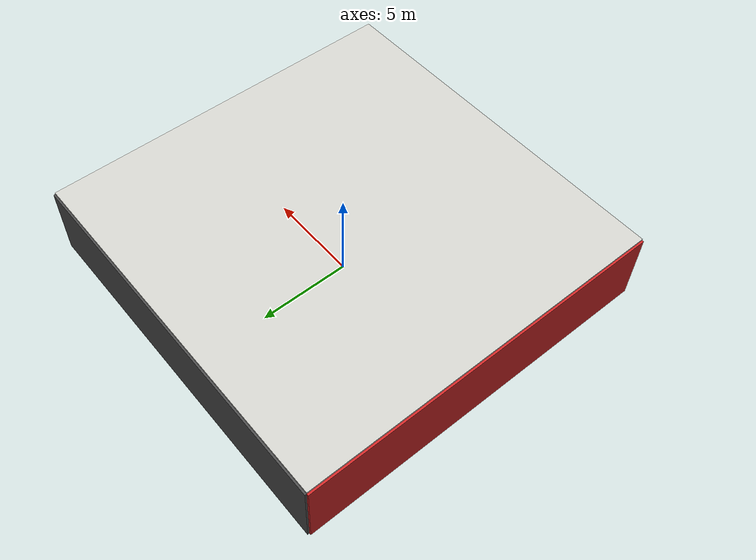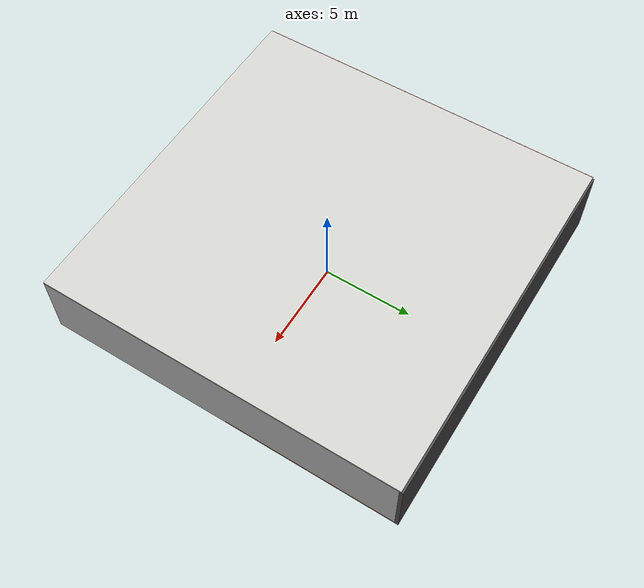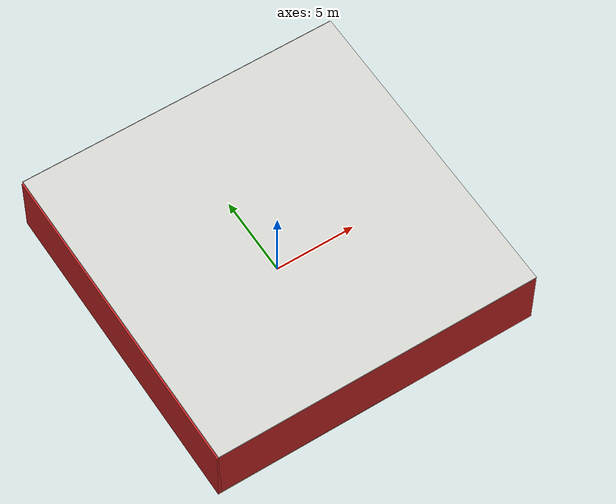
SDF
<sdf version="1.4">
 <world name="default">
  <physics type="ode">
   <max_step_size>0.001</max_step_size>
   <real_time_factor>1</real_time_factor>
   <real_time_update_rate>1000</real_time_update_rate>
   <gravity>0 0 -9.8</gravity>
  </physics>
  <scene><ambient>0.4 0.4 0.4 1</ambient><background>0.7 0.7 0.7 1</background><shadows>1</shadows></scene>
  <model name="Surrounding">
   <static>1</static>
   <link name="Ceiling">
    <collision name="Ceiling_Collision"><geometry><box><size>20 20 0.1</size></box></geometry></collision>
    <visual name="Ceiling_Visual">
     <geometry><box><size>20 20 0.1</size></box></geometry>
     <material>
      <script><uri>file://media/materials/scripts/gazebo.material</uri><name>Gazebo/CeilingTiled</name></script>
     </material>
    </visual>
    <pose>0 0 4.05 0 0 0</pose>
   </link>
   <link name="Wall_South">
    <collision name="Wall_South_Collision">
     <geometry><box><size>20 0 4</size></box></geometry>
     <pose>0 0 2 0 -0 0</pose>
    </collision>
    <visual name="Wall_South_Visual">
     <pose>0 0 2 0 -0 0</pose>
     <geometry><box><size>20 0 4</size></box></geometry>
     <material>
      <script><uri>file://media/materials/scripts/gazebo.material</uri><name>Gazebo/Red</name></script>
     </material>
    </visual>
    <velocity_decay><linear>0</linear><angular>0</angular></velocity_decay>
    <pose>0 -10 0 0 -0 0</pose>
   </link>
   <link name="Wall_East">
    <collision name="Wall_21_Collision">
     <geometry><box><size>20 0 4</size></box></geometry>
     <pose>0 0 2 0 -0 0</pose>
    </collision>
    <visual name="Wall_21_Visual">
     <pose>0 0 2 0 -0 0</pose>
     <geometry><box><size>20 0 4</size></box></geometry>
     <material>
      <script><uri>file://media/materials/scripts/gazebo.material</uri><name>Gazebo/PioneerBody</name></script>
     </material>
    </visual>
    <velocity_decay><linear>0</linear><angular>0</angular></velocity_decay>
    <pose>10 0 0 0 -0 1.5708</pose>
   </link>
   <link name="Wall_North">
    <collision name="Wall_22_Collision">
     <geometry><box><size>20 0.2 4</size></box></geometry>
     <pose>0 0 2 0 -0 0</pose>
    </collision>
    <visual name="Wall_22_Visual">
     <pose>0 0 2 0 -0 0</pose>
     <geometry><box><size>20 0.2 4</size></box></geometry>
     <material>
      <script><uri>file://media/materials/scripts/gazebo.material</uri><name>Gazebo/DarkGrey</name></script>
     </material>
    </visual>
    <velocity_decay><linear>0</linear><angular>0</angular></velocity_decay>
    <pose>0 10 0 0 -0 0</pose>
   </link>
   <link name="Wall_West">
    <collision name="Wall_23_Collision">
     <geometry><box><size>20 0.2 4</size></box></geometry>
     <pose>0 0 2 0 -0 0</pose>
    </collision>
    <visual name="Wall_23_Visual">
     <pose>0 0 2 0 -0 0</pose>
     <geometry><box><size>20 0.2 4</size></box></geometry>
     <material>
      <script><uri>file://media/materials/scripts/gazebo.material</uri><name>Gazebo/Red</name></script>
     </material>
    </visual>
    <velocity_decay><linear>0</linear><angular>0</angular></velocity_decay>
    <pose>-10 0 0 0 0 -1.5708</pose>
   </link>
   <link name="Ground_link">
    <collision name="collision">
     <pose>0 0 .05 0 -0 0</pose>
     <geometry><box><size>20 20 0.1</size></box></geometry>
    </collision>
    <visual name="visual">
     <pose>0 0 .05 0 -0 0</pose>
     <geometry><box><size>20 20 0.1</size></box></geometry>
     <material>
      <script><uri>file://media/materials/scripts/gazebo.material</uri><name>Gazebo/WoodPallet</name></script>
     </material>
    </visual>
   </link>
   <static>1</static>
  </model>
  <spherical_coordinates>
   <surface_model>EARTH_WGS84</surface_model>
   <latitude_deg>0</latitude_deg>
   <longitude_deg>0</longitude_deg>
   <elevation>0</elevation>
   <heading_deg>0</heading_deg>
  </spherical_coordinates>
  <light name="lightball_0" type="diffuse">
   <diffuse>0.8 0.8 0.8 1</diffuse>
   <specular>0.2 0.2 0.2 1</specular>
   <attenuation>
    <range>100</range>
    <constant>0.7</constant>
    <linear>0.01</linear>
    <quadratic>0.001</quadratic>
   </attenuation>
   <direction>-0.5 0.1 -0.9</direction>
   <pose>-2.73484990556 5.05328376433 0.580840324805 0 0 0</pose>
  </light>
  <light name="lightball_1" type="diffuse">
   <diffuse>0.8 0.8 0.8 1</diffuse>
   <specular>0.2 0.2 0.2 1</specular>
   <attenuation>
    <range>100</range>
    <constant>0.7</constant>
    <linear>0.01</linear>
    <quadratic>0.001</quadratic>
   </attenuation>
   <direction>-0.5 0.1 -0.9</direction>
   <pose>-3.83660981307 -6.99774060714 3.01192046346 0 0 0</pose>
  </light>
  <light name="lightball_2" type="diffuse">
   <diffuse>0.8 0.8 0.8 1</diffuse>
   <specular>0.2 0.2 0.2 1</specular>
   <attenuation>
    <range>100</range>
    <constant>0.7</constant>
    <linear>0.01</linear>
    <quadratic>0.001</quadratic>
   </attenuation>
   <direction>-0.5 0.1 -0.9</direction>
   <pose>-8.8480590275 6.74555526799 2.34258505134 0 0 0</pose>
  </light>
  <light name="lightball_3" type="diffuse">
   <diffuse>0.8 0.8 0.8 1</diffuse>
   <specular>0.2 0.2 0.2 1</specular>
   <attenuation>
    <range>100</range>
    <constant>0.7</constant>
    <linear>0.01</linear>
    <quadratic>0.001</quadratic>
   </attenuation>
   <direction>-0.5 0.1 -0.9</direction>
   <pose>-2.83546676773 5.04655833116 2.02920038857 0 0 0</pose>
  </light>
  <light name="lightball_4" type="diffuse">
   <diffuse>0.8 0.8 0.8 1</diffuse>
   <specular>0.2 0.2 0.2 1</specular>
   <attenuation>
    <range>100</range>
    <constant>0.7</constant>
    <linear>0.01</linear>
    <quadratic>0.001</quadratic>
   </attenuation>
   <direction>-0.5 0.1 -0.9</direction>
   <pose>8.37724665143 -8.44736612002 0.969980589711 0 0 0</pose>
  </light>
  <light name="lightball_5" type="diffuse">
   <diffuse>0.8 0.8 0.8 1</diffuse>
   <specular>0.2 0.2 0.2 1</specular>
   <attenuation>
    <range>100</range>
    <constant>0.7</constant>
    <linear>0.01</linear>
    <quadratic>0.001</quadratic>
   </attenuation>
   <direction>-0.5 0.1 -0.9</direction>
   <pose>-7.858783943 -7.71056182673 2.9093492684 0 0 0</pose>
  </light>
  <light name="lightball_6" type="diffuse">
   <diffuse>0.8 0.8 0.8 1</diffuse>
   <specular>0.2 0.2 0.2 1</specular>
   <attenuation>
    <range>100</range>
    <constant>0.7</constant>
    <linear>0.01</linear>
    <quadratic>0.001</quadratic>
   </attenuation>
   <direction>-0.5 0.1 -0.9</direction>
   <pose>-4.92600073834 -4.94825143257 2.77115047555 0 0 0</pose>
  </light>
  <include>
   <uri>model://robocup_3Dsim_goal</uri>
   <pose>-8.27629432258 -8.01721691018 0 0 0 2.17007045808</pose>
  </include>
  <include><uri>model://cabinet</uri><pose>-6.99278115723 5.15799694338 0 0 0 1.26848832284</pose></include>
  <include>
   <uri>model://textured_shapes</uri>
   <pose>-5.14166743428 1.2221630208 0 0 0 1.97127823317</pose>
  </include>
  <include>
   <uri>model://construction_cone</uri>
   <pose>-1.84920622597 -8.05726086577 0 0 0 2.56889665349</pose>
  </include>
  <include><uri>model://table</uri><pose>-0.705149426896 4.35975901235 0 0 0 0.964888472596</pose></include>
  <include>
   <uri>model://robocup_3Dsim_goal</uri>
   <pose>1.87665705436 -5.25467648222 0 0 0 0.348652791049</pose>
  </include>
  <include><uri>model://cabinet</uri><pose>8.11537659963 -2.06975434282 0 0 0 1.0303604332</pose></include>
 </world>
</sdf>

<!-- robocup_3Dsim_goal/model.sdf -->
<sdf version="1.5">
  <model name="robocup_3d_goal">
    <static>true</static>
    <link name="left_post">
      <pose>0 1.05 0.45 0 0 0</pose>
      <collision name="collision">
        <geometry>
          <cylinder>
            <radius>0.05</radius>
            <length>0.9</length>
          </cylinder>
        </geometry>
      </collision>
      <visual name="visual">
        <geometry>
          <cylinder>
            <radius>0.05</radius>
            <length>0.9</length>
          </cylinder>
        </geometry>
        <material>
          <script>
            <uri>file://media/materials/scripts/gazebo.material</uri>
            <name>Gazebo/ZincYellow</name>
          </script>
        </material>
      </visual>
    </link>
    <link name="left_support_horiz_lower">
      <pose>0.30 1.05 0.01 0 0 0</pose>
      <collision name="collision">
        <geometry>
          <box>
            <size>0.50 0.02 0.02</size>
          </box>
        </geometry>
      </collision>
      <visual name="visual">
        <geometry>
          <box>
            <size>0.50 0.02 0.02</size>
          </box>
        </geometry>
        <material>
          <script>
            <uri>file://media/materials/scripts/gazebo.material</uri>
            <name>Gazebo/White</name>
          </script>
        </material>
      </visual>
    </link>
    <link name="left_support_horiz_upper">
      <pose>0.30 1.05 0.79 0 0 0</pose>
      <collision name="collision">
        <geometry>
          <box>
            <size>0.50 0.02 0.02</size>
          </box>
        </geometry>
      </collision>
      <visual name="visual">
        <geometry>
          <box>
            <size>0.50 0.02 0.02</size>
          </box>
        </geometry>
        <material>
          <script>
            <uri>file://media/materials/scripts/gazebo.material</uri>
            <name>Gazebo/White</name>
          </script>
        </material>
      </visual>
    </link>
    <link name="left_support_vertical">
      <pose>0.56 1.05 0.4 0 1.5708 0</pose>
      <collision name="collision">
        <geometry>
          <box>
            <size>0.80 0.02 0.02</size>
          </box>
        </geometry>
      </collision>
      <visual name="visual">
        <geometry>
          <box>
            <size>0.80 0.02 0.02</size>
          </box>
        </geometry>
        <material>
          <script>
            <uri>file://media/materials/scripts/gazebo.material</uri>
            <name>Gazebo/White</name>
          </script>
        </material>
      </visual>
    </link>
    <link name="right_support_horiz_lower">
      <pose>0.30 -1.05 0.01 0 0 0</pose>
      <collision name="collision">
        <geometry>
          <box>
            <size>0.50 0.02 0.02</size>
          </box>
        </geometry>
      </collision>
      <visual name="visual">
        <geometry>
          <box>
            <size>0.50 0.02 0.02</size>
          </box>
        </geometry>
        <material>
          <script>
            <uri>file://media/materials/scripts/gazebo.material</uri>
            <name>Gazebo/White</name>
          </script>
        </material>
      </visual>
    </link>
    <link name="right_support_horiz_upper">
      <pose>0.30 -1.05 0.79 0 0 0</pose>
      <collision name="collision">
        <geometry>
          <box>
            <size>0.50 0.02 0.02</size>
          </box>
        </geometry>
      </collision>
      <visual name="visual">
        <geometry>
          <box>
            <size>0.50 0.02 0.02</size>
          </box>
        </geometry>
        <material>
          <script>
            <uri>file://media/materials/scripts/gazebo.material</uri>
            <name>Gazebo/White</name>
          </script>
        </material>
      </visual>
    </link>
    <link name="right_support_vertical">
      <pose>0.56 -1.05 0.4 0 1.5708 0</pose>
      <collision name="collision">
        <geometry>
          <box>
            <size>0.80 0.02 0.02</size>
          </box>
        </geometry>
      </collision>
      <visual name="visual">
        <geometry>
          <box>
            <size>0.80 0.02 0.02</size>
          </box>
        </geometry>
        <material>
          <script>
            <uri>file://media/materials/scripts/gazebo.material</uri>
            <name>Gazebo/White</name>
          </script>
        </material>
      </visual>
    </link>
    <link name="center_support_horiz_lower">
      <pose>0.56 0 0.01 0 1.5708 0</pose>
      <collision name="collision">
        <geometry>
          <box>
            <size>0.02 2.08 0.02</size>
          </box>
        </geometry>
      </collision>
      <visual name="visual">
        <geometry>
          <box>
            <size>0.02 2.08 0.02</size>
          </box>
        </geometry>
        <material>
          <script>
            <uri>file://media/materials/scripts/gazebo.material</uri>
            <name>Gazebo/White</name>
          </script>
        </material>
      </visual>
    </link>
    <link name="center_support_horiz_upper">
      <pose>0.56 0 0.79 0 1.5708 0</pose>
      <collision name="collision">
        <geometry>
          <box>
            <size>0.02 2.08 0.02</size>
          </box>
        </geometry>
      </collision>
      <visual name="visual">
        <geometry>
          <box>
            <size>0.02 2.08 0.02</size>
          </box>
        </geometry>
        <material>
          <script>
            <uri>file://media/materials/scripts/gazebo.material</uri>
            <name>Gazebo/White</name>
          </script>
        </material>
      </visual>
    </link>
    <link name="right_post">
      <pose>0 -1.05 0.45 0 0 0</pose>
      <collision name="collision">
        <geometry>
          <cylinder>
            <radius>0.05</radius>
            <length>0.9</length>
          </cylinder>
        </geometry>
      </collision>
      <visual name="visual">
        <geometry>
          <cylinder>
            <radius>0.05</radius>
            <length>0.9</length>
          </cylinder>
        </geometry>
        <material>
          <script>
            <uri>file://media/materials/scripts/gazebo.material</uri>
            <name>Gazebo/ZincYellow</name>
          </script>
        </material>
      </visual>
    </link>
    <link name="crossbar">
      <pose>0 0 0.85 1.57 1.57 0</pose>
      <collision name="collision">
        <geometry>
          <cylinder>
            <radius>0.05</radius>
            <length>2.0</length>
          </cylinder>
        </geometry>
      </collision>
      <visual name="visual">
        <geometry>
          <cylinder>
            <radius>0.05</radius>
            <length>2.0</length>
          </cylinder>
        </geometry>
        <material>
          <script>
            <uri>file://media/materials/scripts/gazebo.material</uri>
            <name>Gazebo/ZincYellow</name>
          </script>
        </material>
      </visual>
    </link>
    <link name="center_net">
      <pose>0.56 0 0.40 0 0 0</pose>
      <collision name="collision">
        <geometry>
          <box>
            <size>0.01 2.1 0.80</size>
          </box>
        </geometry>
      </collision>
      <visual name="visual">
        <geometry>
          <box>
            <size>0.01 2.1 0.80</size>
          </box>
        </geometry>
        <material>
          <script>
            <uri>model://../model_source/models/robocup09_spl_field/materials/scripts/</uri>
            <uri>model://../model_source/models/robocup09_spl_field/materials/textures/</uri>
            <name>RoboCup/Net</name>
          </script>
        </material>
      </visual>
    </link>
    <link name="left_net">
      <pose>0.30 1.05 0.40 0 0 0</pose>
      <collision name="collision">
        <geometry>
          <box>
            <size>0.50 0.01 0.76</size>
          </box>
        </geometry>
      </collision>
      <visual name="visual">
        <geometry>
          <box>
            <size>0.50 0.01 0.76</size>
          </box>
        </geometry>
        <material>
          <script>
            <uri>model://../model_source/models/robocup09_spl_field/materials/scripts/</uri>
            <uri>model://../model_source/models/robocup09_spl_field/materials/textures/</uri>
            <name>RoboCup/Net</name>
          </script>
        </material>
      </visual>
    </link>
    <link name="right_net">
      <pose>0.30 -1.05 0.40 0 0 0</pose>
      <collision name="collision">
        <geometry>
          <box>
            <size>0.50 0.01 0.76</size>
          </box>
        </geometry>
      </collision>
      <visual name="visual">
        <geometry>
          <box>
            <size>0.50 0.01 0.76</size>
          </box>
        </geometry>
        <material>
          <script>
            <uri>model://../model_source/models/robocup09_spl_field/materials/scripts/</uri>
            <uri>model://../model_source/models/robocup09_spl_field/materials/textures/</uri>
            <name>RoboCup/Net</name>
          </script>
        </material>
      </visual>
    </link>
  </model>
</sdf>

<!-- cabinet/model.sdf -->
<sdf version="1.5">
  <model name="cabinet">
    <static>true</static>
    <link name="cabinet_bottom_plate">
      <inertial>
        <pose>0 0 -1 0 0 0</pose>
        <inertia>
          <ixx>2.050000</ixx>
          <ixy>0</ixy>
          <ixz>0</ixz>
          <iyy>2.050000</iyy>
          <iyz>0</iyz>
          <izz>2.050000</izz>
        </inertia>
        <mass>25.000000</mass>
      </inertial>
      <collision name="cabinet_bottom_plate_geom">
        <pose>0 0 0.010000 0 0 0</pose>
        <geometry>
          <box>
            <size>0.450000 0.450000 0.020000</size>
          </box>
        </geometry>
      </collision>
      <visual name="cabinet_bottom_plate_geom_visual">
        <pose>0 0 0.010000 0 0 0</pose>
        <geometry>
          <box>
            <size>0.450000 0.450000 0.020000</size>
          </box>
        </geometry>
        <material>
          <script>
            <uri>model://media/materials/scripts/gazebo.material</uri>
            <name>Gazebo/Wood</name>
          </script>
        </material>
      </visual>
      <collision name="cabinet_bottom_plate_geom_cabinet_back_plate">
        <pose>0.235000 0 0.510000 0 0 0</pose>
        <geometry>
          <box>
            <size>0.020000 0.450000 1.020000</size>
          </box>
        </geometry>
      </collision>
      <visual name="cabinet_bottom_plate_geom_cabinet_back_plate_visual">
        <pose>0.235000 0 0.510000 0 0 0</pose>
        <geometry>
          <box>
            <size>0.020000 0.450000 1.020000</size>
          </box>
        </geometry>
        <material>
          <script>
            <uri>model://media/materials/scripts/gazebo.material</uri>
            <name>Gazebo/Wood</name>
          </script>
        </material>
      </visual>
      <collision name="cabinet_bottom_plate_geom_cabinet_left_plate">
        <pose>0 0.235000 0.510000 0 0 0</pose>
        <geometry>
          <box>
            <size>0.450000 0.020000 1.020000</size>
          </box>
        </geometry>
      </collision>
      <visual name="cabinet_bottom_plate_geom_cabinet_left_plate_visual">
        <pose>0 0.235000 0.510000 0 0 0</pose>
        <geometry>
          <box>
            <size>0.450000 0.020000 1.020000</size>
          </box>
        </geometry>
        <material>
          <script>
            <uri>model://media/materials/scripts/gazebo.material</uri>
            <name>Gazebo/Wood</name>
          </script>
        </material>
      </visual>
      <collision name="cabinet_bottom_plate_geom_cabinet_middle_plate">
        <pose>0 0 0.510000 0 0 0</pose>
        <geometry>
          <box>
            <size>0.450000 0.450000 0.020000</size>
          </box>
        </geometry>
      </collision>
      <visual name="cabinet_bottom_plate_geom_cabinet_middle_plate_visual">
        <pose>0 0 0.510000 0 0 0</pose>
        <geometry>
          <box>
            <size>0.450000 0.450000 0.020000</size>
          </box>
        </geometry>
        <material>
          <script>
            <uri>model://media/materials/scripts/gazebo.material</uri>
            <name>Gazebo/Wood</name>
          </script>
        </material>
      </visual>
      <collision name="cabinet_bottom_plate_geom_cabinet_right_plate">
        <pose>0 -0.235000 0.510000 0 0 0</pose>
        <geometry>
          <box>
            <size>0.450000 0.020000 1.020000</size>
          </box>
        </geometry>
      </collision>
      <visual name="cabinet_bottom_plate_geom_cabinet_right_plate_visual">
        <pose>0 -0.235000 0.510000 0 0 0</pose>
        <geometry>
          <box>
            <size>0.450000 0.020000 1.020000</size>
          </box>
        </geometry>
        <material>
          <script>
            <uri>model://media/materials/scripts/gazebo.material</uri>
            <name>Gazebo/Wood</name>
          </script>
        </material>
      </visual>
      <collision name="cabinet_bottom_plate_geom_cabinet_top_plate">
        <pose>0 0 1.010000 0 0 0</pose>
        <geometry>
          <box>
            <size>0.450000 0.450000 0.020000</size>
          </box>
        </geometry>
      </collision>
      <visual name="cabinet_bottom_plate_geom_cabinet_top_plate_visual">
        <pose>0 0 1.010000 0 0 0</pose>
        <geometry>
          <box>
            <size>0.450000 0.450000 0.020000</size>
          </box>
        </geometry>
        <material>
          <script>
            <uri>model://media/materials/scripts/gazebo.material</uri>
            <name>Gazebo/Wood</name>
          </script>
        </material>
      </visual>
    </link>
  </model>
</sdf>

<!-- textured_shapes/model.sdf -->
<sdf version="1.6">
  <model name="textured_shapes">
    <pose>0 0 0.5 0 0 0</pose>
    <link name="box">
      <pose>0 -1.5 0 0 0 0</pose>
      <collision name="collision">
        <geometry>
          <box>
            <size>1 1 1</size>
          </box>
        </geometry>
      </collision>
      <visual name="visual">
        <geometry>
          <box>
            <size>1 1 1</size>
          </box>
        </geometry>
        <material>
          <script>
            <uri>model://../model_source/models/textured_shapes/materials/scripts</uri>
            <uri>model://../model_source/models/textured_shapes/materials/textures</uri>
            <name>TexturedShape/Squares</name>
          </script>
        </material>
      </visual>
    </link>
    <link name="sphere">
      <collision name="collision">
        <geometry>
          <sphere>
            <radius>0.5</radius>
          </sphere>
        </geometry>
      </collision>
      <visual name="visual">
        <geometry>
          <sphere>
            <radius>0.5</radius>
          </sphere>
        </geometry>
        <material>
          <script>
            <uri>model://../model_source/models/textured_shapes/materials/scripts</uri>
            <uri>model://../model_source/models/textured_shapes/materials/textures</uri>
            <name>TexturedShape/Squares</name>
          </script>
        </material>
      </visual>
    </link>
    <link name="cylinder">
      <pose>0 1.5 0 0 0 0</pose>
      <collision name="collision">
        <geometry>
          <cylinder>
            <radius>0.5</radius>
            <length>1</length>
          </cylinder>
        </geometry>
      </collision>
      <visual name="visual">
        <geometry>
          <cylinder>
            <radius>0.5</radius>
            <length>1</length>
          </cylinder>
        </geometry>
        <material>
          <script>
            <uri>model://../model_source/models/textured_shapes/materials/scripts</uri>
            <uri>model://../model_source/models/textured_shapes/materials/textures</uri>
            <name>TexturedShape/Squares</name>
          </script>
        </material>
      </visual>
    </link>
  </model>
</sdf>

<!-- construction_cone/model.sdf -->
<sdf version="1.5">
  <model name="Construction Cone">
    <link name="link">
      <collision name="collision">
        <geometry>
          <mesh>
            <scale>10 10 10</scale>
            <uri>file://isr-testbed/construction_cone/meshes/construction_cone.dae</uri>
          </mesh>
        </geometry>
      </collision>
      <visual name="visual">
        <geometry>
          <mesh>
            <scale>10 10 10</scale>
            <uri>file://isr-testbed/construction_cone/meshes/construction_cone.dae</uri>
          </mesh>
        </geometry>
      </visual>
    </link>
  </model>
</sdf>

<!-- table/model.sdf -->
<sdf version="1.5">
  <model name="table">
    <static>true</static>
    <link name="link">
      <collision name="surface">
        <pose>0 0 1.0 0 0 0</pose>
        <geometry>
          <box>
            <size>1.5 0.8 0.03</size>
          </box>
        </geometry>
        <surface>
          <friction>
            <ode>
              <mu>0.6</mu>
              <mu2>0.6</mu2>
            </ode>
          </friction>
        </surface>
      </collision>
      <visual name="visual1">
        <pose>0 0 1.0 0 0 0</pose>
        <geometry>
          <box>
            <size>1.5 0.8 0.03</size>
          </box>
        </geometry>
        <material>
          <script>
            <uri>model://media/materials/scripts/gazebo.material</uri>
            <name>Gazebo/Wood</name>
          </script>
        </material>
      </visual>
      <collision name="front_left_leg">
        <pose>0.68 0.38 0.5 0 0 0</pose>
        <geometry>
          <cylinder>
            <radius>0.02</radius>
            <length>1.0</length>
          </cylinder>
        </geometry>
      </collision>
      <visual name="front_left_leg">
        <pose>0.68 0.38 0.5 0 0 0</pose>
        <geometry>
          <cylinder>
            <radius>0.02</radius>
            <length>1.0</length>
          </cylinder>
        </geometry>
        <material>
          <script>
            <uri>model://media/materials/scripts/gazebo.material</uri>
            <name>Gazebo/Grey</name>
          </script>
        </material>
      </visual>
      <collision name="front_right_leg">
        <pose>0.68 -0.38 0.5 0 0 0</pose>
        <geometry>
          <cylinder>
            <radius>0.02</radius>
            <length>1.0</length>
          </cylinder>
        </geometry>
      </collision>
      <visual name="front_right_leg">
        <pose>0.68 -0.38 0.5 0 0 0</pose>
        <geometry>
          <cylinder>
            <radius>0.02</radius>
            <length>1.0</length>
          </cylinder>
        </geometry>
        <material>
          <script>
            <uri>model://media/materials/scripts/gazebo.material</uri>
            <name>Gazebo/Grey</name>
          </script>
        </material>
      </visual>
      <collision name="back_right_leg">
        <pose>-0.68 -0.38 0.5 0 0 0</pose>
        <geometry>
          <cylinder>
            <radius>0.02</radius>
            <length>1.0</length>
          </cylinder>
        </geometry>
      </collision>
      <visual name="back_right_leg">
        <pose>-0.68 -0.38 0.5 0 0 0</pose>
        <geometry>
          <cylinder>
            <radius>0.02</radius>
            <length>1.0</length>
          </cylinder>
        </geometry>
        <material>
          <script>
            <uri>model://media/materials/scripts/gazebo.material</uri>
            <name>Gazebo/Grey</name>
          </script>
        </material>
      </visual>
      <collision name="back_left_leg">
        <pose>-0.68 0.38 0.5 0 0 0</pose>
        <geometry>
          <cylinder>
            <radius>0.02</radius>
            <length>1.0</length>
          </cylinder>
        </geometry>
      </collision>
      <visual name="back_left_leg">
        <pose>-0.68 0.38 0.5 0 0 0</pose>
        <geometry>
          <cylinder>
            <radius>0.02</radius>
            <length>1.0</length>
          </cylinder>
        </geometry>
        <material>
          <script>
            <uri>model://media/materials/scripts/gazebo.material</uri>
            <name>Gazebo/Grey</name>
          </script>
        </material>
      </visual>
    </link>
  </model>
</sdf>
